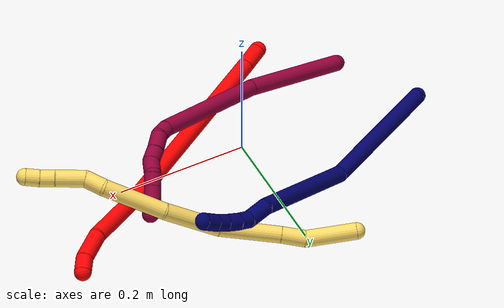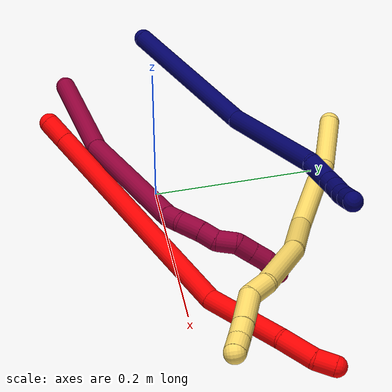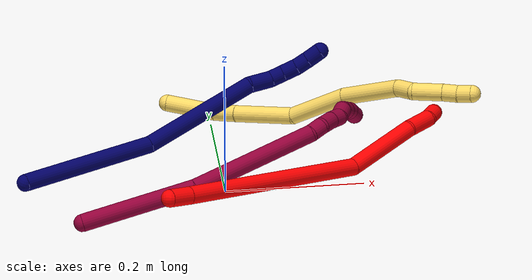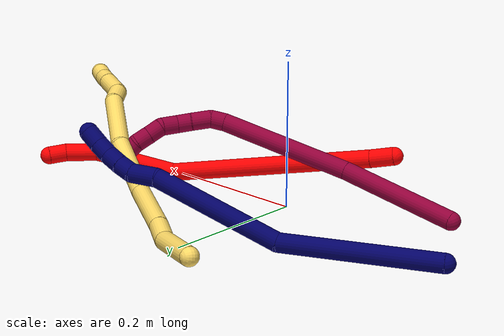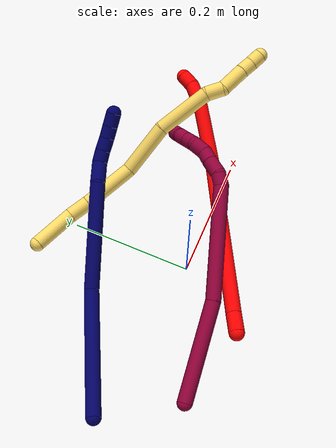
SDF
<sdf version="1.7">
 <world name="default">
  <model name="2">
   <static>0</static>
   <link name="2">
    <collision name="collision-cylinder-e_1_1_4">
     <pose>0.002633 0.010689 -0.011846 -2.40747 0.163574 -0.420098</pose>
     <geometry><cylinder><radius>0.0125</radius><length>0.032343</length></cylinder></geometry>
     <surface>
      <friction><ode><mu>1.16</mu><mu2>1.16</mu2><slip1>0</slip1><slip2>0</slip2></ode></friction>
      <contact><ode><kp>1e+06</kp><kd>1</kd><max_vel>0</max_vel><min_depth>0.001</min_depth></ode></contact>
     </surface>
    </collision>
    <visual name="visual-cylinder-e_1_1_4">
     <pose>0.002633 0.010689 -0.011846 -2.40747 0.163574 -0.420098</pose>
     <geometry><cylinder><radius>0.0125</radius><length>0.032343</length></cylinder></geometry>
     <material><ambient>1 0 0 1</ambient></material>
    </visual>
    <collision name="collision-cylinder-e_2_4_5">
     <pose>0.032022 0.112243 -0.130175 -2.43517 0.188852 -0.502904</pose>
     <geometry><cylinder><radius>0.0125</radius><length>0.285033</length></cylinder></geometry>
     <surface>
      <friction><ode><mu>1.16</mu><mu2>1.16</mu2><slip1>0</slip1><slip2>0</slip2></ode></friction>
      <contact><ode><kp>1e+06</kp><kd>1</kd><max_vel>0</max_vel><min_depth>0.001</min_depth></ode></contact>
     </surface>
    </collision>
    <visual name="visual-cylinder-e_2_4_5">
     <pose>0.032022 0.112243 -0.130175 -2.43517 0.188852 -0.502904</pose>
     <geometry><cylinder><radius>0.0125</radius><length>0.285033</length></cylinder></geometry>
     <material><ambient>1 0 0 1</ambient></material>
    </visual>
    <collision name="collision-cylinder-e_3_5_6">
     <pose>0.089113 0.230544 -0.275376 -2.52511 0.568809 -1.4855</pose>
     <geometry><cylinder><radius>0.0125</radius><length>0.112642</length></cylinder></geometry>
     <surface>
      <friction><ode><mu>1.16</mu><mu2>1.16</mu2><slip1>0</slip1><slip2>0</slip2></ode></friction>
      <contact><ode><kp>1e+06</kp><kd>1</kd><max_vel>0</max_vel><min_depth>0.001</min_depth></ode></contact>
     </surface>
    </collision>
    <visual name="visual-cylinder-e_3_5_6">
     <pose>0.089113 0.230544 -0.275376 -2.52511 0.568809 -1.4855</pose>
     <geometry><cylinder><radius>0.0125</radius><length>0.112642</length></cylinder></geometry>
     <material><ambient>1 0 0 1</ambient></material>
    </visual>
    <collision name="collision-cylinder-e_4_6_7">
     <pose>0.128417 0.273739 -0.327447 -2.27374 0.409624 -0.842849</pose>
     <geometry><cylinder><radius>0.0125</radius><length>0.045037</length></cylinder></geometry>
     <surface>
      <friction><ode><mu>1.16</mu><mu2>1.16</mu2><slip1>0</slip1><slip2>0</slip2></ode></friction>
      <contact><ode><kp>1e+06</kp><kd>1</kd><max_vel>0</max_vel><min_depth>0.001</min_depth></ode></contact>
     </surface>
    </collision>
    <visual name="visual-cylinder-e_4_6_7">
     <pose>0.128417 0.273739 -0.327447 -2.27374 0.409624 -0.842849</pose>
     <geometry><cylinder><radius>0.0125</radius><length>0.045037</length></cylinder></geometry>
     <material><ambient>1 0 0 1</ambient></material>
    </visual>
    <collision name="collision-cylinder-e_5_7_2">
     <pose>0.142788 0.300036 -0.344715 -1.92644 0.448019 -0.633286</pose>
     <geometry><cylinder><radius>0.0125</radius><length>0.024945</length></cylinder></geometry>
     <surface>
      <friction><ode><mu>1.16</mu><mu2>1.16</mu2><slip1>0</slip1><slip2>0</slip2></ode></friction>
      <contact><ode><kp>1e+06</kp><kd>1</kd><max_vel>0</max_vel><min_depth>0.001</min_depth></ode></contact>
     </surface>
    </collision>
    <visual name="visual-cylinder-e_5_7_2">
     <pose>0.142788 0.300036 -0.344715 -1.92644 0.448019 -0.633286</pose>
     <geometry><cylinder><radius>0.0125</radius><length>0.024945</length></cylinder></geometry>
     <material><ambient>1 0 0 1</ambient></material>
    </visual>
    <collision name="collision-sphere-2">
     <pose>0.148191 0.310573 -0.348629 0 -0 0</pose>
     <geometry><sphere><radius>0.0125</radius></sphere></geometry>
     <surface>
      <friction><ode><mu>1.16</mu><mu2>1.16</mu2><slip1>0</slip1><slip2>0</slip2></ode></friction>
      <contact><ode><kp>1e+06</kp><kd>1</kd><max_vel>0</max_vel><min_depth>0.001</min_depth></ode></contact>
     </surface>
    </collision>
    <visual name="visual-sphere-2">
     <pose>0.148191 0.310573 -0.348629 0 -0 0</pose>
     <geometry><sphere><radius>0.0125</radius></sphere></geometry>
     <material><ambient>1 0 0 1</ambient></material>
    </visual>
    <collision name="collision-sphere-7">
     <pose>0.137385 0.289498 -0.3408 0 -0 0</pose>
     <geometry><sphere><radius>0.0125</radius></sphere></geometry>
     <surface>
      <friction><ode><mu>1.16</mu><mu2>1.16</mu2><slip1>0</slip1><slip2>0</slip2></ode></friction>
      <contact><ode><kp>1e+06</kp><kd>1</kd><max_vel>0</max_vel><min_depth>0.001</min_depth></ode></contact>
     </surface>
    </collision>
    <visual name="visual-sphere-7">
     <pose>0.137385 0.289498 -0.3408 0 -0 0</pose>
     <geometry><sphere><radius>0.0125</radius></sphere></geometry>
     <material><ambient>1 0 0 1</ambient></material>
    </visual>
    <collision name="collision-sphere-6">
     <pose>0.119449 0.25798 -0.314094 0 -0 0</pose>
     <geometry><sphere><radius>0.0125</radius></sphere></geometry>
     <surface>
      <friction><ode><mu>1.16</mu><mu2>1.16</mu2><slip1>0</slip1><slip2>0</slip2></ode></friction>
      <contact><ode><kp>1e+06</kp><kd>1</kd><max_vel>0</max_vel><min_depth>0.001</min_depth></ode></contact>
     </surface>
    </collision>
    <visual name="visual-sphere-6">
     <pose>0.119449 0.25798 -0.314094 0 -0 0</pose>
     <geometry><sphere><radius>0.0125</radius></sphere></geometry>
     <material><ambient>1 0 0 1</ambient></material>
    </visual>
    <collision name="collision-sphere-5">
     <pose>0.058776 0.203108 -0.236659 0 -0 0</pose>
     <geometry><sphere><radius>0.0125</radius></sphere></geometry>
     <surface>
      <friction><ode><mu>1.16</mu><mu2>1.16</mu2><slip1>0</slip1><slip2>0</slip2></ode></friction>
      <contact><ode><kp>1e+06</kp><kd>1</kd><max_vel>0</max_vel><min_depth>0.001</min_depth></ode></contact>
     </surface>
    </collision>
    <visual name="visual-sphere-5">
     <pose>0.058776 0.203108 -0.236659 0 -0 0</pose>
     <geometry><sphere><radius>0.0125</radius></sphere></geometry>
     <material><ambient>1 0 0 1</ambient></material>
    </visual>
    <collision name="collision-sphere-1">
     <geometry><sphere><radius>0.0125</radius></sphere></geometry>
     <surface>
      <friction><ode><mu>1.16</mu><mu2>1.16</mu2><slip1>0</slip1><slip2>0</slip2></ode></friction>
      <contact><ode><kp>1e+06</kp><kd>1</kd><max_vel>0</max_vel><min_depth>0.001</min_depth></ode></contact>
     </surface>
    </collision>
    <visual name="visual-sphere-1">
     <geometry><sphere><radius>0.0125</radius></sphere></geometry>
     <material><ambient>1 0 0 1</ambient></material>
    </visual>
    <collision name="collision-sphere-4">
     <pose>0.005267 0.021379 -0.023692 0 -0 0</pose>
     <geometry><sphere><radius>0.0125</radius></sphere></geometry>
     <surface>
      <friction><ode><mu>1.16</mu><mu2>1.16</mu2><slip1>0</slip1><slip2>0</slip2></ode></friction>
      <contact><ode><kp>1e+06</kp><kd>1</kd><max_vel>0</max_vel><min_depth>0.001</min_depth></ode></contact>
     </surface>
    </collision>
    <visual name="visual-sphere-4">
     <pose>0.005267 0.021379 -0.023692 0 -0 0</pose>
     <geometry><sphere><radius>0.0125</radius></sphere></geometry>
     <material><ambient>1 0 0 1</ambient></material>
    </visual>
    <inertial>
     <pose>0.057191 0.156241 -0.183705 0 -0 0</pose>
     <mass>0.5</mass>
     <inertia>
      <ixx>0.00067</ixx>
      <ixy>0</ixy>
      <ixz>0</ixz>
      <iyy>-0.002162</iyy>
      <iyz>0</iyz>
      <izz>-0.001772</izz>
     </inertia>
    </inertial>
   </link>
   <pose>-0.08799 -0.117197 0.063891 -1.65905 -0.981197 1.42974</pose>
  </model>
  <model name="5">
   <static>0</static>
   <link name="5">
    <collision name="collision-cylinder-e_1_1_4">
     <pose>0.036183 0.006123 -0.007165 -2.43445 1.31598 -2.25057</pose>
     <geometry><cylinder><radius>0.0125</radius><length>0.074781</length></cylinder></geometry>
     <surface>
      <friction><ode><mu>1.16</mu><mu2>1.16</mu2><slip1>0</slip1><slip2>0</slip2></ode></friction>
      <contact><ode><kp>1e+06</kp><kd>1</kd><max_vel>0</max_vel><min_depth>0.001</min_depth></ode></contact>
     </surface>
    </collision>
    <visual name="visual-cylinder-e_1_1_4">
     <pose>0.036183 0.006123 -0.007165 -2.43445 1.31598 -2.25057</pose>
     <geometry><cylinder><radius>0.0125</radius><length>0.074781</length></cylinder></geometry>
     <material><ambient>1 0.858824 0.4 1</ambient></material>
    </visual>
    <collision name="collision-cylinder-e_2_4_5">
     <pose>0.089328 0.009966 -0.020321 2.778 1.20946 2.62165</pose>
     <geometry><cylinder><radius>0.0125</radius><length>0.036265</length></cylinder></geometry>
     <surface>
      <friction><ode><mu>1.16</mu><mu2>1.16</mu2><slip1>0</slip1><slip2>0</slip2></ode></friction>
      <contact><ode><kp>1e+06</kp><kd>1</kd><max_vel>0</max_vel><min_depth>0.001</min_depth></ode></contact>
     </surface>
    </collision>
    <visual name="visual-cylinder-e_2_4_5">
     <pose>0.089328 0.009966 -0.020321 2.778 1.20946 2.62165</pose>
     <geometry><cylinder><radius>0.0125</radius><length>0.036265</length></cylinder></geometry>
     <material><ambient>1 0.858824 0.4 1</ambient></material>
    </visual>
    <collision name="collision-cylinder-e_3_5_6">
     <pose>0.149731 0.003141 -0.03861 2.78753 1.27769 2.66886</pose>
     <geometry><cylinder><radius>0.0125</radius><length>0.090752</length></cylinder></geometry>
     <surface>
      <friction><ode><mu>1.16</mu><mu2>1.16</mu2><slip1>0</slip1><slip2>0</slip2></ode></friction>
      <contact><ode><kp>1e+06</kp><kd>1</kd><max_vel>0</max_vel><min_depth>0.001</min_depth></ode></contact>
     </surface>
    </collision>
    <visual name="visual-cylinder-e_3_5_6">
     <pose>0.149731 0.003141 -0.03861 2.78753 1.27769 2.66886</pose>
     <geometry><cylinder><radius>0.0125</radius><length>0.090752</length></cylinder></geometry>
     <material><ambient>1 0.858824 0.4 1</ambient></material>
    </visual>
    <collision name="collision-cylinder-e_4_6_7">
     <pose>0.233484 -0.020033 -0.054712 1.7723 1.13009 1.32062</pose>
     <geometry><cylinder><radius>0.0125</radius><length>0.089142</length></cylinder></geometry>
     <surface>
      <friction><ode><mu>1.16</mu><mu2>1.16</mu2><slip1>0</slip1><slip2>0</slip2></ode></friction>
      <contact><ode><kp>1e+06</kp><kd>1</kd><max_vel>0</max_vel><min_depth>0.001</min_depth></ode></contact>
     </surface>
    </collision>
    <visual name="visual-cylinder-e_4_6_7">
     <pose>0.233484 -0.020033 -0.054712 1.7723 1.13009 1.32062</pose>
     <geometry><cylinder><radius>0.0125</radius><length>0.089142</length></cylinder></geometry>
     <material><ambient>1 0.858824 0.4 1</ambient></material>
    </visual>
    <collision name="collision-cylinder-e_5_7_8">
     <pose>0.314806 -0.055339 -0.073694 2.30909 1.06807 1.85768</pose>
     <geometry><cylinder><radius>0.0125</radius><length>0.0936</length></cylinder></geometry>
     <surface>
      <friction><ode><mu>1.16</mu><mu2>1.16</mu2><slip1>0</slip1><slip2>0</slip2></ode></friction>
      <contact><ode><kp>1e+06</kp><kd>1</kd><max_vel>0</max_vel><min_depth>0.001</min_depth></ode></contact>
     </surface>
    </collision>
    <visual name="visual-cylinder-e_5_7_8">
     <pose>0.314806 -0.055339 -0.073694 2.30909 1.06807 1.85768</pose>
     <geometry><cylinder><radius>0.0125</radius><length>0.0936</length></cylinder></geometry>
     <material><ambient>1 0.858824 0.4 1</ambient></material>
    </visual>
    <collision name="collision-cylinder-e_6_8_9">
     <pose>0.366866 -0.075264 -0.097899 2.7964 0.855769 2.41136</pose>
     <geometry><cylinder><radius>0.0125</radius><length>0.029269</length></cylinder></geometry>
     <surface>
      <friction><ode><mu>1.16</mu><mu2>1.16</mu2><slip1>0</slip1><slip2>0</slip2></ode></friction>
      <contact><ode><kp>1e+06</kp><kd>1</kd><max_vel>0</max_vel><min_depth>0.001</min_depth></ode></contact>
     </surface>
    </collision>
    <visual name="visual-cylinder-e_6_8_9">
     <pose>0.366866 -0.075264 -0.097899 2.7964 0.855769 2.41136</pose>
     <geometry><cylinder><radius>0.0125</radius><length>0.029269</length></cylinder></geometry>
     <material><ambient>1 0.858824 0.4 1</ambient></material>
    </visual>
    <collision name="collision-cylinder-e_7_9_10">
     <pose>0.399415 -0.079303 -0.11125 2.96025 1.36919 2.91975</pose>
     <geometry><cylinder><radius>0.0125</radius><length>0.043887</length></cylinder></geometry>
     <surface>
      <friction><ode><mu>1.16</mu><mu2>1.16</mu2><slip1>0</slip1><slip2>0</slip2></ode></friction>
      <contact><ode><kp>1e+06</kp><kd>1</kd><max_vel>0</max_vel><min_depth>0.001</min_depth></ode></contact>
     </surface>
    </collision>
    <visual name="visual-cylinder-e_7_9_10">
     <pose>0.399415 -0.079303 -0.11125 2.96025 1.36919 2.91975</pose>
     <geometry><cylinder><radius>0.0125</radius><length>0.043887</length></cylinder></geometry>
     <material><ambient>1 0.858824 0.4 1</ambient></material>
    </visual>
    <collision name="collision-cylinder-e_8_10_11">
     <pose>0.431449 -0.080115 -0.118165 3.13409 1.32942 3.13202</pose>
     <geometry><cylinder><radius>0.0125</radius><length>0.0217</length></cylinder></geometry>
     <surface>
      <friction><ode><mu>1.16</mu><mu2>1.16</mu2><slip1>0</slip1><slip2>0</slip2></ode></friction>
      <contact><ode><kp>1e+06</kp><kd>1</kd><max_vel>0</max_vel><min_depth>0.001</min_depth></ode></contact>
     </surface>
    </collision>
    <visual name="visual-cylinder-e_8_10_11">
     <pose>0.431449 -0.080115 -0.118165 3.13409 1.32942 3.13202</pose>
     <geometry><cylinder><radius>0.0125</radius><length>0.0217</length></cylinder></geometry>
     <material><ambient>1 0.858824 0.4 1</ambient></material>
    </visual>
    <collision name="collision-cylinder-e_9_11_2">
     <pose>0.45197 -0.081231 -0.123043 2.6941 1.32225 2.57243</pose>
     <geometry><cylinder><radius>0.0125</radius><length>0.020603</length></cylinder></geometry>
     <surface>
      <friction><ode><mu>1.16</mu><mu2>1.16</mu2><slip1>0</slip1><slip2>0</slip2></ode></friction>
      <contact><ode><kp>1e+06</kp><kd>1</kd><max_vel>0</max_vel><min_depth>0.001</min_depth></ode></contact>
     </surface>
    </collision>
    <visual name="visual-cylinder-e_9_11_2">
     <pose>0.45197 -0.081231 -0.123043 2.6941 1.32225 2.57243</pose>
     <geometry><cylinder><radius>0.0125</radius><length>0.020603</length></cylinder></geometry>
     <material><ambient>1 0.858824 0.4 1</ambient></material>
    </visual>
    <collision name="collision-sphere-2">
     <pose>0.461955 -0.082327 -0.125328 0 -0 0</pose>
     <geometry><sphere><radius>0.0125</radius></sphere></geometry>
     <surface>
      <friction><ode><mu>1.16</mu><mu2>1.16</mu2><slip1>0</slip1><slip2>0</slip2></ode></friction>
      <contact><ode><kp>1e+06</kp><kd>1</kd><max_vel>0</max_vel><min_depth>0.001</min_depth></ode></contact>
     </surface>
    </collision>
    <visual name="visual-sphere-2">
     <pose>0.461955 -0.082327 -0.125328 0 -0 0</pose>
     <geometry><sphere><radius>0.0125</radius></sphere></geometry>
     <material><ambient>1 0.858824 0.4 1</ambient></material>
    </visual>
    <collision name="collision-sphere-11">
     <pose>0.441985 -0.080134 -0.120759 0 -0 0</pose>
     <geometry><sphere><radius>0.0125</radius></sphere></geometry>
     <surface>
      <friction><ode><mu>1.16</mu><mu2>1.16</mu2><slip1>0</slip1><slip2>0</slip2></ode></friction>
      <contact><ode><kp>1e+06</kp><kd>1</kd><max_vel>0</max_vel><min_depth>0.001</min_depth></ode></contact>
     </surface>
    </collision>
    <visual name="visual-sphere-11">
     <pose>0.441985 -0.080134 -0.120759 0 -0 0</pose>
     <geometry><sphere><radius>0.0125</radius></sphere></geometry>
     <material><ambient>1 0.858824 0.4 1</ambient></material>
    </visual>
    <collision name="collision-sphere-10">
     <pose>0.420914 -0.080095 -0.115571 0 -0 0</pose>
     <geometry><sphere><radius>0.0125</radius></sphere></geometry>
     <surface>
      <friction><ode><mu>1.16</mu><mu2>1.16</mu2><slip1>0</slip1><slip2>0</slip2></ode></friction>
      <contact><ode><kp>1e+06</kp><kd>1</kd><max_vel>0</max_vel><min_depth>0.001</min_depth></ode></contact>
     </surface>
    </collision>
    <visual name="visual-sphere-10">
     <pose>0.420914 -0.080095 -0.115571 0 -0 0</pose>
     <geometry><sphere><radius>0.0125</radius></sphere></geometry>
     <material><ambient>1 0.858824 0.4 1</ambient></material>
    </visual>
    <collision name="collision-sphere-9">
     <pose>0.377916 -0.07851 -0.106928 0 -0 0</pose>
     <geometry><sphere><radius>0.0125</radius></sphere></geometry>
     <surface>
      <friction><ode><mu>1.16</mu><mu2>1.16</mu2><slip1>0</slip1><slip2>0</slip2></ode></friction>
      <contact><ode><kp>1e+06</kp><kd>1</kd><max_vel>0</max_vel><min_depth>0.001</min_depth></ode></contact>
     </surface>
    </collision>
    <visual name="visual-sphere-9">
     <pose>0.377916 -0.07851 -0.106928 0 -0 0</pose>
     <geometry><sphere><radius>0.0125</radius></sphere></geometry>
     <material><ambient>1 0.858824 0.4 1</ambient></material>
    </visual>
    <collision name="collision-sphere-4">
     <pose>0.072366 0.012246 -0.01433 0 -0 0</pose>
     <geometry><sphere><radius>0.0125</radius></sphere></geometry>
     <surface>
      <friction><ode><mu>1.16</mu><mu2>1.16</mu2><slip1>0</slip1><slip2>0</slip2></ode></friction>
      <contact><ode><kp>1e+06</kp><kd>1</kd><max_vel>0</max_vel><min_depth>0.001</min_depth></ode></contact>
     </surface>
    </collision>
    <visual name="visual-sphere-4">
     <pose>0.072366 0.012246 -0.01433 0 -0 0</pose>
     <geometry><sphere><radius>0.0125</radius></sphere></geometry>
     <material><ambient>1 0.858824 0.4 1</ambient></material>
    </visual>
    <collision name="collision-sphere-1">
     <geometry><sphere><radius>0.0125</radius></sphere></geometry>
     <surface>
      <friction><ode><mu>1.16</mu><mu2>1.16</mu2><slip1>0</slip1><slip2>0</slip2></ode></friction>
      <contact><ode><kp>1e+06</kp><kd>1</kd><max_vel>0</max_vel><min_depth>0.001</min_depth></ode></contact>
     </surface>
    </collision>
    <visual name="visual-sphere-1">
     <geometry><sphere><radius>0.0125</radius></sphere></geometry>
     <material><ambient>1 0.858824 0.4 1</ambient></material>
    </visual>
    <collision name="collision-sphere-8">
     <pose>0.355815 -0.072017 -0.08887 0 -0 0</pose>
     <geometry><sphere><radius>0.0125</radius></sphere></geometry>
     <surface>
      <friction><ode><mu>1.16</mu><mu2>1.16</mu2><slip1>0</slip1><slip2>0</slip2></ode></friction>
      <contact><ode><kp>1e+06</kp><kd>1</kd><max_vel>0</max_vel><min_depth>0.001</min_depth></ode></contact>
     </surface>
    </collision>
    <visual name="visual-sphere-8">
     <pose>0.355815 -0.072017 -0.08887 0 -0 0</pose>
     <geometry><sphere><radius>0.0125</radius></sphere></geometry>
     <material><ambient>1 0.858824 0.4 1</ambient></material>
    </visual>
    <collision name="collision-sphere-5">
     <pose>0.10629 0.007687 -0.026313 0 -0 0</pose>
     <geometry><sphere><radius>0.0125</radius></sphere></geometry>
     <surface>
      <friction><ode><mu>1.16</mu><mu2>1.16</mu2><slip1>0</slip1><slip2>0</slip2></ode></friction>
      <contact><ode><kp>1e+06</kp><kd>1</kd><max_vel>0</max_vel><min_depth>0.001</min_depth></ode></contact>
     </surface>
    </collision>
    <visual name="visual-sphere-5">
     <pose>0.10629 0.007687 -0.026313 0 -0 0</pose>
     <geometry><sphere><radius>0.0125</radius></sphere></geometry>
     <material><ambient>1 0.858824 0.4 1</ambient></material>
    </visual>
    <collision name="collision-sphere-6">
     <pose>0.193171 -0.001405 -0.050907 0 -0 0</pose>
     <geometry><sphere><radius>0.0125</radius></sphere></geometry>
     <surface>
      <friction><ode><mu>1.16</mu><mu2>1.16</mu2><slip1>0</slip1><slip2>0</slip2></ode></friction>
      <contact><ode><kp>1e+06</kp><kd>1</kd><max_vel>0</max_vel><min_depth>0.001</min_depth></ode></contact>
     </surface>
    </collision>
    <visual name="visual-sphere-6">
     <pose>0.193171 -0.001405 -0.050907 0 -0 0</pose>
     <geometry><sphere><radius>0.0125</radius></sphere></geometry>
     <material><ambient>1 0.858824 0.4 1</ambient></material>
    </visual>
    <collision name="collision-sphere-7">
     <pose>0.273796 -0.038662 -0.058518 0 -0 0</pose>
     <geometry><sphere><radius>0.0125</radius></sphere></geometry>
     <surface>
      <friction><ode><mu>1.16</mu><mu2>1.16</mu2><slip1>0</slip1><slip2>0</slip2></ode></friction>
      <contact><ode><kp>1e+06</kp><kd>1</kd><max_vel>0</max_vel><min_depth>0.001</min_depth></ode></contact>
     </surface>
    </collision>
    <visual name="visual-sphere-7">
     <pose>0.273796 -0.038662 -0.058518 0 -0 0</pose>
     <geometry><sphere><radius>0.0125</radius></sphere></geometry>
     <material><ambient>1 0.858824 0.4 1</ambient></material>
    </visual>
    <inertial>
     <pose>0.233508 -0.029913 -0.058797 0 -0 0</pose>
     <mass>0.5</mass>
     <inertia>
      <ixx>6.8e-05</ixx>
      <ixy>0</ixy>
      <ixz>0</ixz>
      <iyy>0.000287</iyy>
      <iyz>0</iyz>
      <izz>-0.000194</izz>
     </inertia>
    </inertial>
   </link>
   <pose>-0.062162 0.240975 0.019177 -1.38085 -0.110338 -0.193899</pose>
  </model>
  <model name="7">
   <static>0</static>
   <link name="7">
    <collision name="collision-cylinder-e_1_1_4">
     <pose>0.096703 0.020192 0.027168 -0.639136 1.23408 -0.461179</pose>
     <geometry><cylinder><radius>0.0125</radius><length>0.204912</length></cylinder></geometry>
     <surface>
      <friction><ode><mu>1.16</mu><mu2>1.16</mu2><slip1>0</slip1><slip2>0</slip2></ode></friction>
      <contact><ode><kp>1e+06</kp><kd>1</kd><max_vel>0</max_vel><min_depth>0.001</min_depth></ode></contact>
     </surface>
    </collision>
    <visual name="visual-cylinder-e_1_1_4">
     <pose>0.096703 0.020192 0.027168 -0.639136 1.23408 -0.461179</pose>
     <geometry><cylinder><radius>0.0125</radius><length>0.204912</length></cylinder></geometry>
     <material><ambient>0.003922 0 0.403922 1</ambient></material>
    </visual>
    <collision name="collision-cylinder-e_2_4_5">
     <pose>0.263154 0.050941 0.105604 -0.203101 0.927001 -0.101775</pose>
     <geometry><cylinder><radius>0.0125</radius><length>0.174409</length></cylinder></geometry>
     <surface>
      <friction><ode><mu>1.16</mu><mu2>1.16</mu2><slip1>0</slip1><slip2>0</slip2></ode></friction>
      <contact><ode><kp>1e+06</kp><kd>1</kd><max_vel>0</max_vel><min_depth>0.001</min_depth></ode></contact>
     </surface>
    </collision>
    <visual name="visual-cylinder-e_2_4_5">
     <pose>0.263154 0.050941 0.105604 -0.203101 0.927001 -0.101775</pose>
     <geometry><cylinder><radius>0.0125</radius><length>0.174409</length></cylinder></geometry>
     <material><ambient>0.003922 0 0.403922 1</ambient></material>
    </visual>
    <collision name="collision-cylinder-e_3_5_6">
     <pose>0.349793 0.063238 0.162352 -0.307224 1.24272 -0.220807</pose>
     <geometry><cylinder><radius>0.0125</radius><length>0.035685</length></cylinder></geometry>
     <surface>
      <friction><ode><mu>1.16</mu><mu2>1.16</mu2><slip1>0</slip1><slip2>0</slip2></ode></friction>
      <contact><ode><kp>1e+06</kp><kd>1</kd><max_vel>0</max_vel><min_depth>0.001</min_depth></ode></contact>
     </surface>
    </collision>
    <visual name="visual-cylinder-e_3_5_6">
     <pose>0.349793 0.063238 0.162352 -0.307224 1.24272 -0.220807</pose>
     <geometry><cylinder><radius>0.0125</radius><length>0.035685</length></cylinder></geometry>
     <material><ambient>0.003922 0 0.403922 1</ambient></material>
    </visual>
    <collision name="collision-cylinder-e_4_6_7">
     <pose>0.374631 0.06423 0.174115 0.118239 0.898355 0.057047</pose>
     <geometry><cylinder><radius>0.0125</radius><length>0.020317</length></cylinder></geometry>
     <surface>
      <friction><ode><mu>1.16</mu><mu2>1.16</mu2><slip1>0</slip1><slip2>0</slip2></ode></friction>
      <contact><ode><kp>1e+06</kp><kd>1</kd><max_vel>0</max_vel><min_depth>0.001</min_depth></ode></contact>
     </surface>
    </collision>
    <visual name="visual-cylinder-e_4_6_7">
     <pose>0.374631 0.06423 0.174115 0.118239 0.898355 0.057047</pose>
     <geometry><cylinder><radius>0.0125</radius><length>0.020317</length></cylinder></geometry>
     <material><ambient>0.003922 0 0.403922 1</ambient></material>
    </visual>
    <collision name="collision-cylinder-e_5_7_8">
     <pose>0.390828 0.061916 0.187614 0.213976 0.840754 0.095946</pose>
     <geometry><cylinder><radius>0.0125</radius><length>0.022143</length></cylinder></geometry>
     <surface>
      <friction><ode><mu>1.16</mu><mu2>1.16</mu2><slip1>0</slip1><slip2>0</slip2></ode></friction>
      <contact><ode><kp>1e+06</kp><kd>1</kd><max_vel>0</max_vel><min_depth>0.001</min_depth></ode></contact>
     </surface>
    </collision>
    <visual name="visual-cylinder-e_5_7_8">
     <pose>0.390828 0.061916 0.187614 0.213976 0.840754 0.095946</pose>
     <geometry><cylinder><radius>0.0125</radius><length>0.022143</length></cylinder></geometry>
     <material><ambient>0.003922 0 0.403922 1</ambient></material>
    </visual>
    <collision name="collision-cylinder-e_6_8_9">
     <pose>0.405609 0.059335 0.202381 0.133286 0.708691 0.049374</pose>
     <geometry><cylinder><radius>0.0125</radius><length>0.020071</length></cylinder></geometry>
     <surface>
      <friction><ode><mu>1.16</mu><mu2>1.16</mu2><slip1>0</slip1><slip2>0</slip2></ode></friction>
      <contact><ode><kp>1e+06</kp><kd>1</kd><max_vel>0</max_vel><min_depth>0.001</min_depth></ode></contact>
     </surface>
    </collision>
    <visual name="visual-cylinder-e_6_8_9">
     <pose>0.405609 0.059335 0.202381 0.133286 0.708691 0.049374</pose>
     <geometry><cylinder><radius>0.0125</radius><length>0.020071</length></cylinder></geometry>
     <material><ambient>0.003922 0 0.403922 1</ambient></material>
    </visual>
    <collision name="collision-cylinder-e_7_9_2">
     <pose>0.418908 0.057102 0.218812 0.136602 0.646671 0.045838</pose>
     <geometry><cylinder><radius>0.0125</radius><length>0.022463</length></cylinder></geometry>
     <surface>
      <friction><ode><mu>1.16</mu><mu2>1.16</mu2><slip1>0</slip1><slip2>0</slip2></ode></friction>
      <contact><ode><kp>1e+06</kp><kd>1</kd><max_vel>0</max_vel><min_depth>0.001</min_depth></ode></contact>
     </surface>
    </collision>
    <visual name="visual-cylinder-e_7_9_2">
     <pose>0.418908 0.057102 0.218812 0.136602 0.646671 0.045838</pose>
     <geometry><cylinder><radius>0.0125</radius><length>0.022463</length></cylinder></geometry>
     <material><ambient>0.003922 0 0.403922 1</ambient></material>
    </visual>
    <collision name="collision-sphere-2">
     <pose>0.425675 0.055881 0.227693 0 -0 0</pose>
     <geometry><sphere><radius>0.0125</radius></sphere></geometry>
     <surface>
      <friction><ode><mu>1.16</mu><mu2>1.16</mu2><slip1>0</slip1><slip2>0</slip2></ode></friction>
      <contact><ode><kp>1e+06</kp><kd>1</kd><max_vel>0</max_vel><min_depth>0.001</min_depth></ode></contact>
     </surface>
    </collision>
    <visual name="visual-sphere-2">
     <pose>0.425675 0.055881 0.227693 0 -0 0</pose>
     <geometry><sphere><radius>0.0125</radius></sphere></geometry>
     <material><ambient>0.003922 0 0.403922 1</ambient></material>
    </visual>
    <collision name="collision-sphere-9">
     <pose>0.41214 0.058323 0.209932 0 -0 0</pose>
     <geometry><sphere><radius>0.0125</radius></sphere></geometry>
     <surface>
      <friction><ode><mu>1.16</mu><mu2>1.16</mu2><slip1>0</slip1><slip2>0</slip2></ode></friction>
      <contact><ode><kp>1e+06</kp><kd>1</kd><max_vel>0</max_vel><min_depth>0.001</min_depth></ode></contact>
     </surface>
    </collision>
    <visual name="visual-sphere-9">
     <pose>0.41214 0.058323 0.209932 0 -0 0</pose>
     <geometry><sphere><radius>0.0125</radius></sphere></geometry>
     <material><ambient>0.003922 0 0.403922 1</ambient></material>
    </visual>
    <collision name="collision-sphere-4">
     <pose>0.193406 0.040383 0.054337 0 -0 0</pose>
     <geometry><sphere><radius>0.0125</radius></sphere></geometry>
     <surface>
      <friction><ode><mu>1.16</mu><mu2>1.16</mu2><slip1>0</slip1><slip2>0</slip2></ode></friction>
      <contact><ode><kp>1e+06</kp><kd>1</kd><max_vel>0</max_vel><min_depth>0.001</min_depth></ode></contact>
     </surface>
    </collision>
    <visual name="visual-sphere-4">
     <pose>0.193406 0.040383 0.054337 0 -0 0</pose>
     <geometry><sphere><radius>0.0125</radius></sphere></geometry>
     <material><ambient>0.003922 0 0.403922 1</ambient></material>
    </visual>
    <collision name="collision-sphere-1">
     <geometry><sphere><radius>0.0125</radius></sphere></geometry>
     <surface>
      <friction><ode><mu>1.16</mu><mu2>1.16</mu2><slip1>0</slip1><slip2>0</slip2></ode></friction>
      <contact><ode><kp>1e+06</kp><kd>1</kd><max_vel>0</max_vel><min_depth>0.001</min_depth></ode></contact>
     </surface>
    </collision>
    <visual name="visual-sphere-1">
     <geometry><sphere><radius>0.0125</radius></sphere></geometry>
     <material><ambient>0.003922 0 0.403922 1</ambient></material>
    </visual>
    <collision name="collision-sphere-8">
     <pose>0.399078 0.060348 0.194829 0 -0 0</pose>
     <geometry><sphere><radius>0.0125</radius></sphere></geometry>
     <surface>
      <friction><ode><mu>1.16</mu><mu2>1.16</mu2><slip1>0</slip1><slip2>0</slip2></ode></friction>
      <contact><ode><kp>1e+06</kp><kd>1</kd><max_vel>0</max_vel><min_depth>0.001</min_depth></ode></contact>
     </surface>
    </collision>
    <visual name="visual-sphere-8">
     <pose>0.399078 0.060348 0.194829 0 -0 0</pose>
     <geometry><sphere><radius>0.0125</radius></sphere></geometry>
     <material><ambient>0.003922 0 0.403922 1</ambient></material>
    </visual>
    <collision name="collision-sphere-5">
     <pose>0.332902 0.061499 0.156872 0 -0 0</pose>
     <geometry><sphere><radius>0.0125</radius></sphere></geometry>
     <surface>
      <friction><ode><mu>1.16</mu><mu2>1.16</mu2><slip1>0</slip1><slip2>0</slip2></ode></friction>
      <contact><ode><kp>1e+06</kp><kd>1</kd><max_vel>0</max_vel><min_depth>0.001</min_depth></ode></contact>
     </surface>
    </collision>
    <visual name="visual-sphere-5">
     <pose>0.332902 0.061499 0.156872 0 -0 0</pose>
     <geometry><sphere><radius>0.0125</radius></sphere></geometry>
     <material><ambient>0.003922 0 0.403922 1</ambient></material>
    </visual>
    <collision name="collision-sphere-6">
     <pose>0.366683 0.064976 0.167831 0 -0 0</pose>
     <geometry><sphere><radius>0.0125</radius></sphere></geometry>
     <surface>
      <friction><ode><mu>1.16</mu><mu2>1.16</mu2><slip1>0</slip1><slip2>0</slip2></ode></friction>
      <contact><ode><kp>1e+06</kp><kd>1</kd><max_vel>0</max_vel><min_depth>0.001</min_depth></ode></contact>
     </surface>
    </collision>
    <visual name="visual-sphere-6">
     <pose>0.366683 0.064976 0.167831 0 -0 0</pose>
     <geometry><sphere><radius>0.0125</radius></sphere></geometry>
     <material><ambient>0.003922 0 0.403922 1</ambient></material>
    </visual>
    <collision name="collision-sphere-7">
     <pose>0.382578 0.063484 0.180399 0 -0 0</pose>
     <geometry><sphere><radius>0.0125</radius></sphere></geometry>
     <surface>
      <friction><ode><mu>1.16</mu><mu2>1.16</mu2><slip1>0</slip1><slip2>0</slip2></ode></friction>
      <contact><ode><kp>1e+06</kp><kd>1</kd><max_vel>0</max_vel><min_depth>0.001</min_depth></ode></contact>
     </surface>
    </collision>
    <visual name="visual-sphere-7">
     <pose>0.382578 0.063484 0.180399 0 -0 0</pose>
     <geometry><sphere><radius>0.0125</radius></sphere></geometry>
     <material><ambient>0.003922 0 0.403922 1</ambient></material>
    </visual>
    <inertial>
     <pose>0.224021 0.040857 0.092896 0 -0 0</pose>
     <mass>0.5</mass>
     <inertia>
      <ixx>0.000388</ixx>
      <ixy>0</ixy>
      <ixz>0</ixz>
      <iyy>0.001029</iyy>
      <iyz>0</iyz>
      <izz>-0.001232</izz>
     </inertia>
    </inertial>
   </link>
   <pose>-0.282298 0.036746 0.01237 0.097264 0.286826 0.280155</pose>
  </model>
  <model name="8">
   <static>0</static>
   <link name="8">
    <collision name="collision-cylinder-e_1_1_4">
     <pose>0.058886 0.043454 -0.035753 -2.25927 0.808098 -1.47168</pose>
     <geometry><cylinder><radius>0.0125</radius><length>0.162901</length></cylinder></geometry>
     <surface>
      <friction><ode><mu>1.16</mu><mu2>1.16</mu2><slip1>0</slip1><slip2>0</slip2></ode></friction>
      <contact><ode><kp>1e+06</kp><kd>1</kd><max_vel>0</max_vel><min_depth>0.001</min_depth></ode></contact>
     </surface>
    </collision>
    <visual name="visual-cylinder-e_1_1_4">
     <pose>0.058886 0.043454 -0.035753 -2.25927 0.808098 -1.47168</pose>
     <geometry><cylinder><radius>0.0125</radius><length>0.162901</length></cylinder></geometry>
     <material><ambient>0.584314 0 0.227451 1</ambient></material>
    </visual>
    <collision name="collision-cylinder-e_2_4_5">
     <pose>0.171695 0.13941 -0.125498 -2.37019 0.621381 -1.3382</pose>
     <geometry><cylinder><radius>0.0125</radius><length>0.185249</length></cylinder></geometry>
     <surface>
      <friction><ode><mu>1.16</mu><mu2>1.16</mu2><slip1>0</slip1><slip2>0</slip2></ode></friction>
      <contact><ode><kp>1e+06</kp><kd>1</kd><max_vel>0</max_vel><min_depth>0.001</min_depth></ode></contact>
     </surface>
    </collision>
    <visual name="visual-cylinder-e_2_4_5">
     <pose>0.171695 0.13941 -0.125498 -2.37019 0.621381 -1.3382</pose>
     <geometry><cylinder><radius>0.0125</radius><length>0.185249</length></cylinder></geometry>
     <material><ambient>0.584314 0 0.227451 1</ambient></material>
    </visual>
    <collision name="collision-cylinder-e_3_5_6">
     <pose>0.22925 0.197254 -0.187396 -2.54737 0.363823 -1.08199</pose>
     <geometry><cylinder><radius>0.0125</radius><length>0.020416</length></cylinder></geometry>
     <surface>
      <friction><ode><mu>1.16</mu><mu2>1.16</mu2><slip1>0</slip1><slip2>0</slip2></ode></friction>
      <contact><ode><kp>1e+06</kp><kd>1</kd><max_vel>0</max_vel><min_depth>0.001</min_depth></ode></contact>
     </surface>
    </collision>
    <visual name="visual-cylinder-e_3_5_6">
     <pose>0.22925 0.197254 -0.187396 -2.54737 0.363823 -1.08199</pose>
     <geometry><cylinder><radius>0.0125</radius><length>0.020416</length></cylinder></geometry>
     <material><ambient>0.584314 0 0.227451 1</ambient></material>
    </visual>
    <collision name="collision-cylinder-e_4_6_7">
     <pose>0.235476 0.20522 -0.208325 -2.94268 0.192797 -1.53937</pose>
     <geometry><cylinder><radius>0.0125</radius><length>0.027074</length></cylinder></geometry>
     <surface>
      <friction><ode><mu>1.16</mu><mu2>1.16</mu2><slip1>0</slip1><slip2>0</slip2></ode></friction>
      <contact><ode><kp>1e+06</kp><kd>1</kd><max_vel>0</max_vel><min_depth>0.001</min_depth></ode></contact>
     </surface>
    </collision>
    <visual name="visual-cylinder-e_4_6_7">
     <pose>0.235476 0.20522 -0.208325 -2.94268 0.192797 -1.53937</pose>
     <geometry><cylinder><radius>0.0125</radius><length>0.027074</length></cylinder></geometry>
     <material><ambient>0.584314 0 0.227451 1</ambient></material>
    </visual>
    <collision name="collision-cylinder-e_5_7_8">
     <pose>0.241113 0.209526 -0.231027 -2.96962 0.300442 -2.10622</pose>
     <geometry><cylinder><radius>0.0125</radius><length>0.020566</length></cylinder></geometry>
     <surface>
      <friction><ode><mu>1.16</mu><mu2>1.16</mu2><slip1>0</slip1><slip2>0</slip2></ode></friction>
      <contact><ode><kp>1e+06</kp><kd>1</kd><max_vel>0</max_vel><min_depth>0.001</min_depth></ode></contact>
     </surface>
    </collision>
    <visual name="visual-cylinder-e_5_7_8">
     <pose>0.241113 0.209526 -0.231027 -2.96962 0.300442 -2.10622</pose>
     <geometry><cylinder><radius>0.0125</radius><length>0.020566</length></cylinder></geometry>
     <material><ambient>0.584314 0 0.227451 1</ambient></material>
    </visual>
    <collision name="collision-cylinder-e_6_8_9">
     <pose>0.242542 0.213644 -0.252135 -2.93153 -0.137254 1.15558</pose>
     <geometry><cylinder><radius>0.0125</radius><length>0.023596</length></cylinder></geometry>
     <surface>
      <friction><ode><mu>1.16</mu><mu2>1.16</mu2><slip1>0</slip1><slip2>0</slip2></ode></friction>
      <contact><ode><kp>1e+06</kp><kd>1</kd><max_vel>0</max_vel><min_depth>0.001</min_depth></ode></contact>
     </surface>
    </collision>
    <visual name="visual-cylinder-e_6_8_9">
     <pose>0.242542 0.213644 -0.252135 -2.93153 -0.137254 1.15558</pose>
     <geometry><cylinder><radius>0.0125</radius><length>0.023596</length></cylinder></geometry>
     <material><ambient>0.584314 0 0.227451 1</ambient></material>
    </visual>
    <collision name="collision-cylinder-e_7_9_10">
     <pose>0.241836 0.21368 -0.27332 2.90024 0.090145 0.712163</pose>
     <geometry><cylinder><radius>0.0125</radius><length>0.020175</length></cylinder></geometry>
     <surface>
      <friction><ode><mu>1.16</mu><mu2>1.16</mu2><slip1>0</slip1><slip2>0</slip2></ode></friction>
      <contact><ode><kp>1e+06</kp><kd>1</kd><max_vel>0</max_vel><min_depth>0.001</min_depth></ode></contact>
     </surface>
    </collision>
    <visual name="visual-cylinder-e_7_9_10">
     <pose>0.241836 0.21368 -0.27332 2.90024 0.090145 0.712163</pose>
     <geometry><cylinder><radius>0.0125</radius><length>0.020175</length></cylinder></geometry>
     <material><ambient>0.584314 0 0.227451 1</ambient></material>
    </visual>
    <collision name="collision-cylinder-e_8_10_11">
     <pose>0.243549 0.209077 -0.292803 2.91902 0.080519 0.691948</pose>
     <geometry><cylinder><radius>0.0125</radius><length>0.020013</length></cylinder></geometry>
     <surface>
      <friction><ode><mu>1.16</mu><mu2>1.16</mu2><slip1>0</slip1><slip2>0</slip2></ode></friction>
      <contact><ode><kp>1e+06</kp><kd>1</kd><max_vel>0</max_vel><min_depth>0.001</min_depth></ode></contact>
     </surface>
    </collision>
    <visual name="visual-cylinder-e_8_10_11">
     <pose>0.243549 0.209077 -0.292803 2.91902 0.080519 0.691948</pose>
     <geometry><cylinder><radius>0.0125</radius><length>0.020013</length></cylinder></geometry>
     <material><ambient>0.584314 0 0.227451 1</ambient></material>
    </visual>
    <collision name="collision-cylinder-e_9_11_2">
     <pose>0.247206 0.202605 -0.311118 2.68005 0.289164 1.10954</pose>
     <geometry><cylinder><radius>0.0125</radius><length>0.02001</length></cylinder></geometry>
     <surface>
      <friction><ode><mu>1.16</mu><mu2>1.16</mu2><slip1>0</slip1><slip2>0</slip2></ode></friction>
      <contact><ode><kp>1e+06</kp><kd>1</kd><max_vel>0</max_vel><min_depth>0.001</min_depth></ode></contact>
     </surface>
    </collision>
    <visual name="visual-cylinder-e_9_11_2">
     <pose>0.247206 0.202605 -0.311118 2.68005 0.289164 1.10954</pose>
     <geometry><cylinder><radius>0.0125</radius><length>0.02001</length></cylinder></geometry>
     <material><ambient>0.584314 0 0.227451 1</ambient></material>
    </visual>
    <collision name="collision-sphere-2">
     <pose>0.250059 0.198335 -0.319704 0 -0 0</pose>
     <geometry><sphere><radius>0.0125</radius></sphere></geometry>
     <surface>
      <friction><ode><mu>1.16</mu><mu2>1.16</mu2><slip1>0</slip1><slip2>0</slip2></ode></friction>
      <contact><ode><kp>1e+06</kp><kd>1</kd><max_vel>0</max_vel><min_depth>0.001</min_depth></ode></contact>
     </surface>
    </collision>
    <visual name="visual-sphere-2">
     <pose>0.250059 0.198335 -0.319704 0 -0 0</pose>
     <geometry><sphere><radius>0.0125</radius></sphere></geometry>
     <material><ambient>0.584314 0 0.227451 1</ambient></material>
    </visual>
    <collision name="collision-sphere-11">
     <pose>0.244353 0.206876 -0.302531 0 -0 0</pose>
     <geometry><sphere><radius>0.0125</radius></sphere></geometry>
     <surface>
      <friction><ode><mu>1.16</mu><mu2>1.16</mu2><slip1>0</slip1><slip2>0</slip2></ode></friction>
      <contact><ode><kp>1e+06</kp><kd>1</kd><max_vel>0</max_vel><min_depth>0.001</min_depth></ode></contact>
     </surface>
    </collision>
    <visual name="visual-sphere-11">
     <pose>0.244353 0.206876 -0.302531 0 -0 0</pose>
     <geometry><sphere><radius>0.0125</radius></sphere></geometry>
     <material><ambient>0.584314 0 0.227451 1</ambient></material>
    </visual>
    <collision name="collision-sphere-10">
     <pose>0.242744 0.211279 -0.283075 0 -0 0</pose>
     <geometry><sphere><radius>0.0125</radius></sphere></geometry>
     <surface>
      <friction><ode><mu>1.16</mu><mu2>1.16</mu2><slip1>0</slip1><slip2>0</slip2></ode></friction>
      <contact><ode><kp>1e+06</kp><kd>1</kd><max_vel>0</max_vel><min_depth>0.001</min_depth></ode></contact>
     </surface>
    </collision>
    <visual name="visual-sphere-10">
     <pose>0.242744 0.211279 -0.283075 0 -0 0</pose>
     <geometry><sphere><radius>0.0125</radius></sphere></geometry>
     <material><ambient>0.584314 0 0.227451 1</ambient></material>
    </visual>
    <collision name="collision-sphere-9">
     <pose>0.240928 0.216081 -0.263565 0 -0 0</pose>
     <geometry><sphere><radius>0.0125</radius></sphere></geometry>
     <surface>
      <friction><ode><mu>1.16</mu><mu2>1.16</mu2><slip1>0</slip1><slip2>0</slip2></ode></friction>
      <contact><ode><kp>1e+06</kp><kd>1</kd><max_vel>0</max_vel><min_depth>0.001</min_depth></ode></contact>
     </surface>
    </collision>
    <visual name="visual-sphere-9">
     <pose>0.240928 0.216081 -0.263565 0 -0 0</pose>
     <geometry><sphere><radius>0.0125</radius></sphere></geometry>
     <material><ambient>0.584314 0 0.227451 1</ambient></material>
    </visual>
    <collision name="collision-sphere-4">
     <pose>0.117773 0.086909 -0.071505 0 -0 0</pose>
     <geometry><sphere><radius>0.0125</radius></sphere></geometry>
     <surface>
      <friction><ode><mu>1.16</mu><mu2>1.16</mu2><slip1>0</slip1><slip2>0</slip2></ode></friction>
      <contact><ode><kp>1e+06</kp><kd>1</kd><max_vel>0</max_vel><min_depth>0.001</min_depth></ode></contact>
     </surface>
    </collision>
    <visual name="visual-sphere-4">
     <pose>0.117773 0.086909 -0.071505 0 -0 0</pose>
     <geometry><sphere><radius>0.0125</radius></sphere></geometry>
     <material><ambient>0.584314 0 0.227451 1</ambient></material>
    </visual>
    <collision name="collision-sphere-1">
     <geometry><sphere><radius>0.0125</radius></sphere></geometry>
     <surface>
      <friction><ode><mu>1.16</mu><mu2>1.16</mu2><slip1>0</slip1><slip2>0</slip2></ode></friction>
      <contact><ode><kp>1e+06</kp><kd>1</kd><max_vel>0</max_vel><min_depth>0.001</min_depth></ode></contact>
     </surface>
    </collision>
    <visual name="visual-sphere-1">
     <geometry><sphere><radius>0.0125</radius></sphere></geometry>
     <material><ambient>0.584314 0 0.227451 1</ambient></material>
    </visual>
    <collision name="collision-sphere-8">
     <pose>0.244156 0.211207 -0.240704 0 -0 0</pose>
     <geometry><sphere><radius>0.0125</radius></sphere></geometry>
     <surface>
      <friction><ode><mu>1.16</mu><mu2>1.16</mu2><slip1>0</slip1><slip2>0</slip2></ode></friction>
      <contact><ode><kp>1e+06</kp><kd>1</kd><max_vel>0</max_vel><min_depth>0.001</min_depth></ode></contact>
     </surface>
    </collision>
    <visual name="visual-sphere-8">
     <pose>0.244156 0.211207 -0.240704 0 -0 0</pose>
     <geometry><sphere><radius>0.0125</radius></sphere></geometry>
     <material><ambient>0.584314 0 0.227451 1</ambient></material>
    </visual>
    <collision name="collision-sphere-5">
     <pose>0.225617 0.191912 -0.179491 0 -0 0</pose>
     <geometry><sphere><radius>0.0125</radius></sphere></geometry>
     <surface>
      <friction><ode><mu>1.16</mu><mu2>1.16</mu2><slip1>0</slip1><slip2>0</slip2></ode></friction>
      <contact><ode><kp>1e+06</kp><kd>1</kd><max_vel>0</max_vel><min_depth>0.001</min_depth></ode></contact>
     </surface>
    </collision>
    <visual name="visual-sphere-5">
     <pose>0.225617 0.191912 -0.179491 0 -0 0</pose>
     <geometry><sphere><radius>0.0125</radius></sphere></geometry>
     <material><ambient>0.584314 0 0.227451 1</ambient></material>
    </visual>
    <collision name="collision-sphere-6">
     <pose>0.232882 0.202595 -0.195301 0 -0 0</pose>
     <geometry><sphere><radius>0.0125</radius></sphere></geometry>
     <surface>
      <friction><ode><mu>1.16</mu><mu2>1.16</mu2><slip1>0</slip1><slip2>0</slip2></ode></friction>
      <contact><ode><kp>1e+06</kp><kd>1</kd><max_vel>0</max_vel><min_depth>0.001</min_depth></ode></contact>
     </surface>
    </collision>
    <visual name="visual-sphere-6">
     <pose>0.232882 0.202595 -0.195301 0 -0 0</pose>
     <geometry><sphere><radius>0.0125</radius></sphere></geometry>
     <material><ambient>0.584314 0 0.227451 1</ambient></material>
    </visual>
    <collision name="collision-sphere-7">
     <pose>0.23807 0.207846 -0.221349 0 -0 0</pose>
     <geometry><sphere><radius>0.0125</radius></sphere></geometry>
     <surface>
      <friction><ode><mu>1.16</mu><mu2>1.16</mu2><slip1>0</slip1><slip2>0</slip2></ode></friction>
      <contact><ode><kp>1e+06</kp><kd>1</kd><max_vel>0</max_vel><min_depth>0.001</min_depth></ode></contact>
     </surface>
    </collision>
    <visual name="visual-sphere-7">
     <pose>0.23807 0.207846 -0.221349 0 -0 0</pose>
     <geometry><sphere><radius>0.0125</radius></sphere></geometry>
     <material><ambient>0.584314 0 0.227451 1</ambient></material>
    </visual>
    <inertial>
     <pose>0.155672 0.128775 -0.133678 0 -0 0</pose>
     <mass>0.5</mass>
     <inertia>
      <ixx>-0.000528</ixx>
      <ixy>0</ixy>
      <ixz>0</ixz>
      <iyy>-0.00036</iyy>
      <iyz>0</iyz>
      <izz>-0.001105</izz>
     </inertia>
    </inertial>
   </link>
   <pose>-0.207209 -0.082513 0.012204 1.3003 0.240013 -0.503115</pose>
  </model>
 </world>
</sdf>
